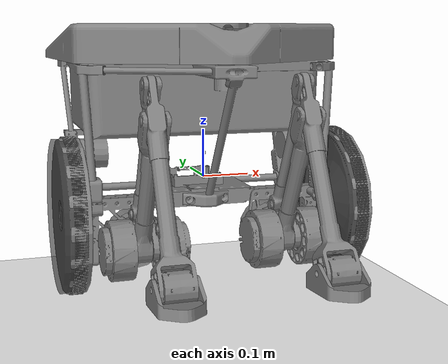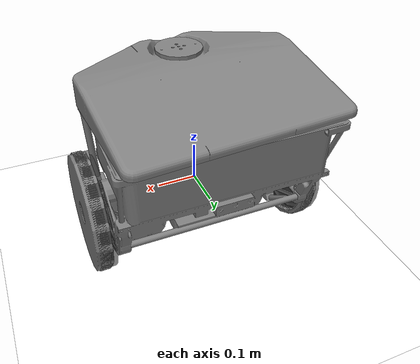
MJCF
<mujoco model="bowl">
  <compiler angle="radian"/>

  <option integrator="RK4" timestep="0.002" gravity="0 0 -9.81"/>

  <default>
    <default class="wheel">
      <geom friction="1.2 0.005 0.0001"
            solref="0.02 1"
            solimp="0.9 0.95 0.001 0.5 2"/>
    </default>
  </default>

  <asset>
    <mesh name="mesh59"  file="meshes/59.stl"/>
    <mesh name="mesh63"  file="meshes/63.stl"/>
    <mesh name="mesh75"  file="meshes/75.stl"/>
    <mesh name="mesh79"  file="meshes/79.stl"/>
    <mesh name="mesh83"  file="meshes/83.stl"/>
    <mesh name="mesh87"  file="meshes/87.stl"/>
    <mesh name="mesh100" file="meshes/100.stl"/>
    <mesh name="mesh104" file="meshes/104.stl"/>
    <mesh name="mesh111" file="meshes/111.stl"/>
    <mesh name="mesh127" file="meshes/127.stl"/>
    <mesh name="mesh131" file="meshes/131.stl"/>
    <mesh name="mesh150" file="meshes/150.stl"/>
  </asset>

  <worldbody>
    <!-- ============================================================
         Floor — friction matched to wheel defaults
    ============================================================ -->
    <geom name="floor" size="0 0 0.01" pos="0 0 -0.3" type="plane"
          rgba="1.0 1.0 1.0 1"
          friction="1.0 0.005 0.0001"
          solref="0.02 1"
          solimp="0.9 0.95 0.001 0.5 2"/>

    <site name="world_origin" pos="0 0 0"/>

    <!-- ============================================================
         Main robot body
    ============================================================ -->
    <body name="Frame">
      <inertial pos="-0.00577203 0.0294079 0.0402019"
                quat="0.438736 0.553719 0.442563 0.552307"
                mass="13"
                diaginertia="0.573956 0.486537 0.334122"/>
      <joint name="Fastened 1_0" type="free"/>

      <!-- Body-frame IMU site (used for complementary filter) -->
      <site name="imu_sensor_site" pos="0 0 0.05"/>

      <geom type="mesh" contype="0" conaffinity="0" mesh="mesh111"
            pos="-0.00546297 0.0848 0.0954208"/>
      <geom type="box" size="0.25 0.15 0.22" pos="0 0.05 0.1"
            contype="1" conaffinity="1" rgba="0 0 0 0"/>

      <!-- == Right hip / leg assembly == -->
      <body name="Hip" pos="0.144537 -0.03389 -0.118135">
        <inertial pos="9.89938e-11 -0.0652752 -3.6294e-07"
                  quat="2.99052e-05 0.703737 2.96222e-05 0.71046"
                  mass="4.677" diaginertia="0.0203952 0.0192001 0.00962716"/>
        <geom type="mesh" contype="0" conaffinity="0" mesh="mesh59"
              pos="0.15 0.11869 0.213556"/>
        <body name="Thigh" pos="-0.03125 -0.07 0" quat="0.976296 -0.216439 0 0">
          <inertial pos="0.0235362 -0.120388 0.101442"
                    quat="0.636039 0.308271 -0.288111 0.646076"
                    mass="0.439" diaginertia="0.00607694 0.00604218 0.000157761"/>
          <geom type="mesh" contype="0" conaffinity="0" mesh="mesh79"
                pos="0.18125 0.18869 0.213556"/>
          <body name="Calf" pos="0.02625 -0.225522 0.190669" quat="0.984808 -0.173648 0 0">
            <inertial pos="0.00130628 0.0508335 -0.148234"
                      quat="0.697745 0.11292 -0.120002 0.697137"
                      mass="0.804" diaginertia="0.0145063 0.0144449 0.000354461"/>
            <geom type="mesh" contype="0" conaffinity="0" mesh="mesh131"
                  pos="0.155 0.414212 0.0228866"/>
            <body name="Foot" pos="0.02725 0.0957158 -0.279381" quat="0.953717 0.300706 0 0">
              <inertial pos="-0.0257628 0.0025349 -0.0233876"
                        quat="0.464535 0.517605 -0.534755 0.479927"
                        mass="0.242" diaginertia="0.000515045 0.000386185 0.000183729"/>
              <geom type="mesh" contype="1" conaffinity="1" mesh="mesh127"
                    pos="0.12775 0.318497 0.302267"
                    friction="0.8 0.005 0.0001" solref="0.02 1" solimp="0.9 0.95 0.001 0.5 2"/>
            </body>
          </body>
        </body>
        <body name="Knee Kicker_1" pos="0.03125 -0.07 0" quat="0.92388 -0.382683 0 0">
          <inertial pos="-0.0160967 -0.0110483 0.0322497"
                    quat="0.979198 0.163089 -0.119078 -0.0198329"
                    mass="0.178" diaginertia="0.000242067 0.000232993 3.88114e-05"/>
          <geom type="mesh" contype="0" conaffinity="0" mesh="mesh87"
                pos="0.11875 0.18869 0.213556"/>
          <body name="Align bar" pos="-0.03625 -0.0225108 0.0657059" quat="0.984808 0.173648 0 0">
            <inertial pos="-2.02172e-12 -0.138854 0.117827"
                      quat="0.641754 0.296903 -0.296903 0.641754"
                      mass="0.186" diaginertia="0.00239967 0.00239678 2.56216e-05"/>
            <geom type="mesh" contype="0" conaffinity="0" mesh="mesh83"
                  pos="0.155 0.211201 0.14785"/>
          </body>
        </body>
      </body>

      <!-- == Left hip / leg assembly == -->
      <body name="Hip_1" pos="-0.155463 -0.03389 -0.118135">
        <inertial pos="9.89938e-11 -0.0652752 -3.6294e-07"
                  quat="2.99052e-05 0.703737 2.96222e-05 0.71046"
                  mass="4.677" diaginertia="0.0203952 0.0192001 0.00962716"/>
        <geom type="mesh" contype="0" conaffinity="0" mesh="mesh59"
              pos="0.15 0.11869 0.213556"/>
        <body name="Thigh_1" pos="-0.03125 -0.07 0" quat="0.976296 -0.216439 0 0">
          <inertial pos="0.0235362 -0.120388 0.101442"
                    quat="0.636039 0.308271 -0.288111 0.646076"
                    mass="0.439" diaginertia="0.00607694 0.00604218 0.000157761"/>
          <geom type="mesh" contype="0" conaffinity="0" mesh="mesh79"
                pos="0.18125 0.18869 0.213556"/>
          <body name="Calf_1" pos="0.02625 -0.225522 0.190669" quat="0.984808 -0.173648 0 0">
            <inertial pos="0.00130628 0.0508335 -0.148234"
                      quat="0.697745 0.11292 -0.120002 0.697137"
                      mass="0.804" diaginertia="0.0145063 0.0144449 0.000354461"/>
            <geom type="mesh" contype="0" conaffinity="0" mesh="mesh131"
                  pos="0.155 0.414212 0.0228866"/>
            <body name="Foot_1" pos="0.02725 0.0957158 -0.279381" quat="0.953717 0.300706 0 0">
              <inertial pos="-0.0257628 0.0025349 -0.0233876"
                        quat="0.464535 0.517605 -0.534755 0.479927"
                        mass="0.242" diaginertia="0.000515045 0.000386185 0.000183729"/>
              <geom type="mesh" contype="1" conaffinity="1" mesh="mesh127"
                    pos="0.12775 0.318497 0.302267"
                    friction="0.8 0.005 0.0001" solref="0.02 1" solimp="0.9 0.95 0.001 0.5 2"/>
            </body>
          </body>
        </body>
        <body name="Knee Kicker" pos="0.03125 -0.07 0" quat="0.92388 -0.382683 0 0">
          <inertial pos="-0.0160967 -0.0110483 0.0322497"
                    quat="0.979198 0.163089 -0.119078 -0.0198329"
                    mass="0.178" diaginertia="0.000242067 0.000232993 3.88114e-05"/>
          <geom type="mesh" contype="0" conaffinity="0" mesh="mesh87"
                pos="0.11875 0.18869 0.213556"/>
          <body name="Align bar_1" pos="-0.03625 -0.0225108 0.0657059" quat="0.984808 0.173648 0 0">
            <inertial pos="-2.02172e-12 -0.138854 0.117827"
                      quat="0.641754 0.296903 -0.296903 0.641754"
                      mass="0.186" diaginertia="0.00239967 0.00239678 2.56216e-05"/>
            <geom type="mesh" contype="0" conaffinity="0" mesh="mesh83"
                  pos="0.155 0.211201 0.14785"/>
          </body>
        </body>
      </body>

      <!-- == Left wheel gear + wheel == -->
      <body name="Wheel Gear_1" pos="-0.282193 0.0390428 0.0543905"
            quat="0.707105 -0.707108 0 0">
        <inertial pos="0 2.72439e-07 -2.20681e-05"
                  quat="-0.00435929 0.707093 -0.00435929 0.707093"
                  mass="0.046" diaginertia="3.58168e-06 3.57739e-06 2.96111e-06"/>
        <joint name="left_motor_0" pos="0 0 0" axis="-1 0 0"/>
        <geom type="mesh" contype="0" conaffinity="0" mesh="mesh100"
              pos="0.27443 0.0457572 0.0410302"/>
      </body>

      <body name="Wheel_1" pos="-0.302263 -0.03839 -0.056195">
        <inertial pos="0.00423538 7.2923e-09 -1.13899e-10"
                  mass="0.707" diaginertia="0.00916228 0.00465503 0.00465503"/>
        <joint name="left_wheel_0" pos="0 0 0" axis="-1 0 0"/>
        <geom type="mesh" contype="0" conaffinity="0" mesh="mesh150"
              pos="0.2968 0.12319 0.151616"/>
        <!-- Collision cylinder: class="wheel" picks up friction defaults -->
        <geom class="wheel" type="cylinder" size="0.154 0.018"
              quat="0.7071 0 0.7071 0" contype="1" conaffinity="1" rgba="0.2 0.2 0.2 0.6"/>
      </body>

      <!-- == Lid + lid gear (passive, no actuator) == -->
      <body name="Lid" pos="-0.00546297 -0.11133 0.294511">
        <inertial pos="-0.00667876 0.103152 -0.00905696"
                  quat="-0.00956325 0.706186 0.0361322 0.70704"
                  mass="2.818" diaginertia="0.0965965 0.0585789 0.040202"/>
        <geom type="mesh" contype="0" conaffinity="0" mesh="mesh104"
              pos="0 0.19613 -0.20009"/>
      </body>

      <body name="Lid Gear" pos="-0.00560326 -0.163819 0.240861">
        <inertial pos="1.04235e-12 2.50691e-11 0.0144022"
                  quat="0.5 0.5 -0.5 0.5"
                  mass="0.025" diaginertia="3.67541e-06 3.37396e-06 3.37396e-06"/>
        <geom type="mesh" contype="0" conaffinity="0" mesh="mesh63"
              pos="0.000140291 0.248619 -0.14544"/>
      </body>

      <!-- == Right wheel gear + wheel == -->
      <body name="Wheel Gear" pos="0.271267 0.0390428 0.0543905">
        <inertial pos="0 2.72439e-07 -2.20681e-05"
                  quat="-0.00435929 0.707093 -0.00435929 0.707093"
                  mass="0.046" diaginertia="3.58168e-06 3.57739e-06 2.96111e-06"/>
        <joint name="right_motor_0" pos="0 0 0" axis="1 0 0"/>
        <geom type="mesh" contype="0" conaffinity="0" mesh="mesh100"
              pos="0.27443 0.0457572 0.0410302"/>
      </body>

      <body name="Wheel" pos="0.26638 -0.03839 -0.056195"
            quat="1.76039e-12 1.32679e-06 -1 -1.32679e-06">
        <inertial pos="-0.0207221 7.2923e-09 -1.13899e-10"
                  mass="0.707" diaginertia="0.00916228 0.00465503 0.00465503"/>
        <joint name="right_wheel_0" pos="0 0 0" axis="-1 0 0"/>
        <geom type="mesh" contype="0" conaffinity="0" mesh="mesh150"
              pos="0.271842 0.12319 0.151616"/>
        <!-- Collision cylinder: class="wheel" picks up friction defaults -->
        <geom class="wheel" type="cylinder" size="0.154 0.018"
              quat="0.7071 0 0.7071 0" contype="1" conaffinity="1" rgba="0.2 0.2 0.2 0.6"/>
      </body>

    </body>
  </worldbody>

  <actuator>
    <motor name="act_left_wheel"  joint="left_wheel_0"  ctrlrange="-30 30" gear="1"/>
    <motor name="act_right_wheel" joint="right_wheel_0" ctrlrange="-30 30" gear="1"/>
  </actuator>

  <sensor>
    <!-- Body-frame IMU -->
    <gyro         site="imu_sensor_site" name="imu_gyro"/>
    <accelerometer site="imu_sensor_site" name="imu_accel"/>
    <velocimeter  site="imu_sensor_site" name="imu_lin_vel"/>

    <!-- Global-frame ground-truth sensors -->
    <framepos    name="gt_pos"    objtype="body" objname="Frame"/>
    <framequat   name="gt_quat"   objtype="body" objname="Frame"/>
    <framelinvel name="gt_linvel" objtype="body" objname="Frame"/>
    <frameangvel name="gt_angvel" objtype="body" objname="Frame"/>
  </sensor>

</mujoco>
